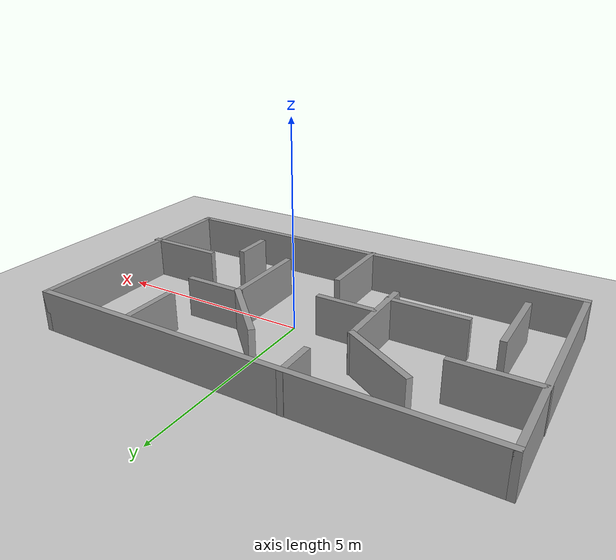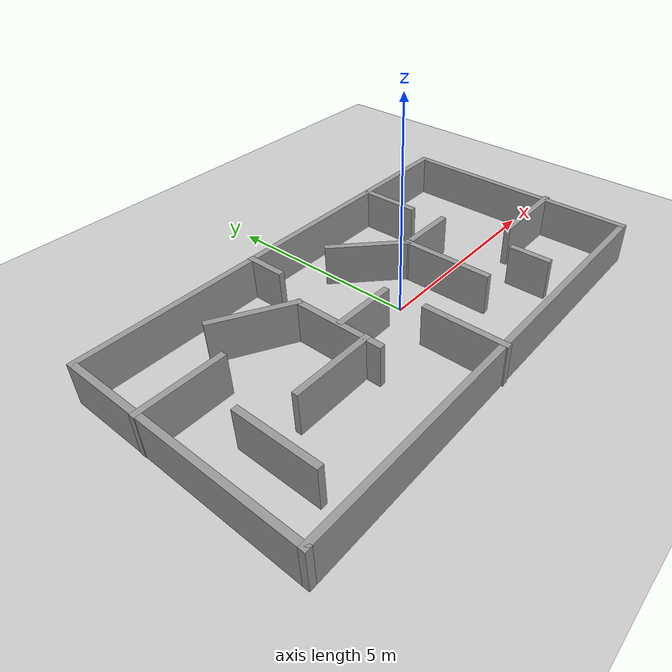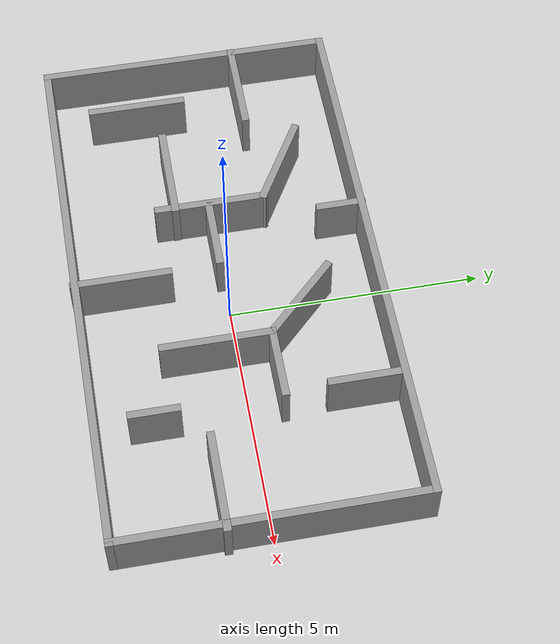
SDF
<sdf version="1.7">
 <world name="default">
  <light name="sun" type="directional">
   <pose>0 0 10 0 -0 0</pose>
   <diffuse>0.8 0.8 0.8 1</diffuse>
   <specular>0.2 0.2 0.2 1</specular>
   <attenuation>
    <range>1000</range>
    <constant>0.9</constant>
    <linear>0.01</linear>
    <quadratic>0.001</quadratic>
   </attenuation>
   <direction>-0.5 0.1 -0.9</direction>
   <spot><inner_angle>0</inner_angle><outer_angle>0</outer_angle><falloff>0</falloff></spot>
  </light>
  <model name="ground_plane">
   <static>1</static>
   <link name="link">
    <collision name="collision">
     <geometry><plane><normal>0 0 1</normal><size>100 100</size></plane></geometry>
     <surface><friction><ode><mu>100</mu><mu2>50</mu2></ode></friction></surface>
    </collision>
    <visual name="visual">
     <cast_shadows>0</cast_shadows>
     <geometry><plane><normal>0 0 1</normal><size>100 100</size></plane></geometry>
     <material>
      <script><uri>file://media/materials/scripts/gazebo.material</uri><name>Gazebo/Grey</name></script>
     </material>
    </visual>
   </link>
  </model>
  <gravity>0 0 -9.8</gravity>
  <magnetic_field>6e-06 2.3e-05 -4.2e-05</magnetic_field>
  <atmosphere type="adiabatic"/>
  <physics type="ode">
   <max_step_size>0.001</max_step_size>
   <real_time_factor>1</real_time_factor>
   <real_time_update_rate>1000</real_time_update_rate>
  </physics>
  <scene><ambient>0.4 0.4 0.4 1</ambient><background>0.7 0.7 0.7 1</background><shadows>1</shadows></scene>
  <spherical_coordinates>
   <surface_model>EARTH_WGS84</surface_model>
   <latitude_deg>0</latitude_deg>
   <longitude_deg>0</longitude_deg>
   <elevation>0</elevation>
   <heading_deg>0</heading_deg>
  </spherical_coordinates>
  <model name="puzzle_lower">
   <pose>-0.5 0 0 0 -0 0</pose>
   <link name="Wall_0">
    <collision name="Wall_0_Collision">
     <geometry><box><size>6 0.15 1</size></box></geometry>
     <pose>0 0 0.5 0 -0 0</pose>
    </collision>
    <visual name="Wall_0_Visual">
     <pose>0 0 0.5 0 -0 0</pose>
     <geometry><box><size>6 0.15 1</size></box></geometry>
     <material>
      <script><uri>file://media/materials/scripts/gazebo.material</uri><name>Gazebo/Grey</name></script>
      <ambient>1 1 1 1</ambient>
     </material>
     <meta><layer>0</layer></meta>
    </visual>
    <pose>-5.4595 0.0105 0 0 -0 1.5708</pose>
   </link>
   <link name="Wall_1">
    <collision name="Wall_1_Collision">
     <geometry><box><size>11 0.15 1</size></box></geometry>
     <pose>0 0 0.5 0 -0 0</pose>
    </collision>
    <visual name="Wall_1_Visual">
     <pose>0 0 0.5 0 -0 0</pose>
     <geometry><box><size>11 0.15 1</size></box></geometry>
     <material>
      <script><uri>file://media/materials/scripts/gazebo.material</uri><name>Gazebo/Grey</name></script>
      <ambient>1 1 1 1</ambient>
     </material>
     <meta><layer>0</layer></meta>
    </visual>
    <pose>-0.0345 2.9355 0 0 -0 0</pose>
   </link>
   <link name="Wall_10">
    <collision name="Wall_10_Collision">
     <geometry><box><size>1.5 0.15 1</size></box></geometry>
     <pose>0 0 0.5 0 -0 0</pose>
    </collision>
    <visual name="Wall_10_Visual">
     <pose>0 0 0.5 0 -0 0</pose>
     <geometry><box><size>1.5 0.15 1</size></box></geometry>
     <material>
      <script><uri>file://media/materials/scripts/gazebo.material</uri><name>Gazebo/Grey</name></script>
      <ambient>1 1 1 1</ambient>
     </material>
     <meta><layer>0</layer></meta>
    </visual>
    <pose>-0.8405 -0.0765 0 0 -0 0</pose>
   </link>
   <link name="Wall_17">
    <collision name="Wall_17_Collision">
     <geometry><box><size>2 0.15 1</size></box></geometry>
     <pose>0 0 0.5 0 -0 0</pose>
    </collision>
    <visual name="Wall_17_Visual">
     <pose>0 0 0.5 0 -0 0</pose>
     <geometry><box><size>2 0.15 1</size></box></geometry>
     <material>
      <script><uri>file://media/materials/scripts/gazebo.material</uri><name>Gazebo/Grey</name></script>
      <ambient>1 1 1 1</ambient>
     </material>
     <meta><layer>0</layer></meta>
    </visual>
    <pose>-0.0815 -2.0195 0 0 -0 1.5708</pose>
   </link>
   <link name="Wall_19">
    <collision name="Wall_19_Collision">
     <geometry><box><size>2 0.15 1</size></box></geometry>
     <pose>0 0 0.5 0 -0 0</pose>
    </collision>
    <visual name="Wall_19_Visual">
     <pose>0 0 0.5 0 -0 0</pose>
     <geometry><box><size>2 0.15 1</size></box></geometry>
     <material>
      <script><uri>file://media/materials/scripts/gazebo.material</uri><name>Gazebo/Grey</name></script>
      <ambient>1 1 1 1</ambient>
     </material>
     <meta><layer>0</layer></meta>
    </visual>
    <pose>-2.4865 -0.7475 0 0 -0 3.14159</pose>
   </link>
   <link name="Wall_2">
    <collision name="Wall_2_Collision">
     <geometry><box><size>6 0.15 1</size></box></geometry>
     <pose>0 0 0.5 0 -0 0</pose>
    </collision>
    <visual name="Wall_2_Visual">
     <pose>0 0 0.5 0 -0 0</pose>
     <geometry><box><size>6 0.15 1</size></box></geometry>
     <material>
      <script><uri>file://media/materials/scripts/gazebo.material</uri><name>Gazebo/Grey</name></script>
      <ambient>1 1 1 1</ambient>
     </material>
     <meta><layer>0</layer></meta>
    </visual>
    <pose>5.3905 0.0105 0 0 -0 -1.5708</pose>
   </link>
   <link name="Wall_25">
    <collision name="Wall_25_Collision">
     <geometry><box><size>2 0.15 1</size></box></geometry>
     <pose>0 0 0.5 0 -0 0</pose>
    </collision>
    <visual name="Wall_25_Visual">
     <pose>0 0 0.5 0 -0 0</pose>
     <geometry><box><size>2 0.15 1</size></box></geometry>
     <material>
      <script><uri>file://media/materials/scripts/gazebo.material</uri><name>Gazebo/Grey</name></script>
      <ambient>1 1 1 1</ambient>
     </material>
     <meta><layer>0</layer></meta>
    </visual>
    <pose>0.966 1.3055 0 0 -0 -0.785016</pose>
   </link>
   <link name="Wall_26">
    <collision name="Wall_26_Collision">
     <geometry><box><size>2.25 0.15 1</size></box></geometry>
     <pose>0 0 0.5 0 -0 0</pose>
    </collision>
    <visual name="Wall_26_Visual">
     <pose>0 0 0.5 0 -0 0</pose>
     <geometry><box><size>2.25 0.15 1</size></box></geometry>
     <material>
      <script><uri>file://media/materials/scripts/gazebo.material</uri><name>Gazebo/Grey</name></script>
      <ambient>1 1 1 1</ambient>
     </material>
     <meta><layer>0</layer></meta>
    </visual>
    <pose>1.6205 -0.3985 0 0 -0 -1.5708</pose>
   </link>
   <link name="Wall_28">
    <collision name="Wall_28_Collision">
     <geometry><box><size>1.5 0.15 1</size></box></geometry>
     <pose>0 0 0.5 0 -0 0</pose>
    </collision>
    <visual name="Wall_28_Visual">
     <pose>0 0 0.5 0 -0 0</pose>
     <geometry><box><size>1.5 0.15 1</size></box></geometry>
     <material>
      <script><uri>file://media/materials/scripts/gazebo.material</uri><name>Gazebo/Grey</name></script>
      <ambient>1 1 1 1</ambient>
     </material>
     <meta><layer>0</layer></meta>
    </visual>
    <pose>2.9025 2.2095 0 0 -0 -1.5708</pose>
   </link>
   <link name="Wall_3">
    <collision name="Wall_3_Collision">
     <geometry><box><size>11 0.15 1</size></box></geometry>
     <pose>0 0 0.5 0 -0 0</pose>
    </collision>
    <visual name="Wall_3_Visual">
     <pose>0 0 0.5 0 -0 0</pose>
     <geometry><box><size>11 0.15 1</size></box></geometry>
     <material>
      <script><uri>file://media/materials/scripts/gazebo.material</uri><name>Gazebo/Grey</name></script>
      <ambient>1 1 1 1</ambient>
     </material>
     <meta><layer>0</layer></meta>
    </visual>
    <pose>-0.0345 -2.9145 0 0 -0 3.14159</pose>
   </link>
   <link name="Wall_30">
    <collision name="Wall_30_Collision">
     <geometry><box><size>1.5 0.15 1</size></box></geometry>
     <pose>0 0 0.5 0 -0 0</pose>
    </collision>
    <visual name="Wall_30_Visual">
     <pose>0 0 0.5 0 -0 0</pose>
     <geometry><box><size>1.5 0.15 1</size></box></geometry>
     <material>
      <script><uri>file://media/materials/scripts/gazebo.material</uri><name>Gazebo/Grey</name></script>
      <ambient>1 1 1 1</ambient>
     </material>
     <meta><layer>0</layer></meta>
    </visual>
    <pose>2.2955 0.6515 0 0 -0 0</pose>
   </link>
   <link name="Wall_32">
    <collision name="Wall_32_Collision">
     <geometry><box><size>2 0.15 1</size></box></geometry>
     <pose>0 0 0.5 0 -0 0</pose>
    </collision>
    <visual name="Wall_32_Visual">
     <pose>0 0 0.5 0 -0 0</pose>
     <geometry><box><size>2 0.15 1</size></box></geometry>
     <material>
      <script><uri>file://media/materials/scripts/gazebo.material</uri><name>Gazebo/Grey</name></script>
      <ambient>1 1 1 1</ambient>
     </material>
     <meta><layer>0</layer></meta>
    </visual>
    <pose>4.5455 -0.8395 0 0 -0 3.14159</pose>
   </link>
   <link name="Wall_35">
    <collision name="Wall_35_Collision">
     <geometry><box><size>2 0.15 1</size></box></geometry>
     <pose>0 0 0.5 0 -0 0</pose>
    </collision>
    <visual name="Wall_35_Visual">
     <pose>0 0 0.5 0 -0 0</pose>
     <geometry><box><size>2 0.15 1</size></box></geometry>
     <material>
      <script><uri>file://media/materials/scripts/gazebo.material</uri><name>Gazebo/Grey</name></script>
      <ambient>1 1 1 1</ambient>
     </material>
     <meta><layer>0</layer></meta>
    </visual>
    <pose>-4.3375 -1.1635 0 0 -0 -1.5708</pose>
   </link>
   <link name="Wall_37">
    <collision name="Wall_37_Collision">
     <geometry><box><size>1 0.15 1</size></box></geometry>
     <pose>0 0 0.5 0 -0 0</pose>
    </collision>
    <visual name="Wall_37_Visual">
     <pose>0 0 0.5 0 -0 0</pose>
     <geometry><box><size>1 0.15 1</size></box></geometry>
     <material>
      <script><uri>file://media/materials/scripts/gazebo.material</uri><name>Gazebo/Grey</name></script>
      <ambient>1 1 1 1</ambient>
     </material>
     <meta><layer>0</layer></meta>
    </visual>
    <pose>2.9485 -1.7895 0 0 -0 1.5708</pose>
   </link>
   <link name="Wall_39">
    <collision name="Wall_39_Collision">
     <geometry><box><size>1 0.15 1</size></box></geometry>
     <pose>0 0 0.5 0 -0 0</pose>
    </collision>
    <visual name="Wall_39_Visual">
     <pose>0 0 0.5 0 -0 0</pose>
     <geometry><box><size>1 0.15 1</size></box></geometry>
     <material>
      <script><uri>file://media/materials/scripts/gazebo.material</uri><name>Gazebo/Grey</name></script>
      <ambient>1 1 1 1</ambient>
     </material>
     <meta><layer>0</layer></meta>
    </visual>
    <pose>-1.0915 2.5195 0 0 -0 -1.5708</pose>
   </link>
   <link name="Wall_5">
    <collision name="Wall_5_Collision">
     <geometry><box><size>2 0.15 1</size></box></geometry>
     <pose>0 0 0.5 0 -0 0</pose>
    </collision>
    <visual name="Wall_5_Visual">
     <pose>0 0 0.5 0 -0 0</pose>
     <geometry><box><size>2 0.15 1</size></box></geometry>
     <material>
      <script><uri>file://media/materials/scripts/gazebo.material</uri><name>Gazebo/Grey</name></script>
      <ambient>1 1 1 1</ambient>
     </material>
     <meta><layer>0</layer></meta>
    </visual>
    <pose>-4.5455 1.0105 0 0 -0 0</pose>
   </link>
   <link name="Wall_7">
    <collision name="Wall_7_Collision">
     <geometry><box><size>2 0.15 1</size></box></geometry>
     <pose>0 0 0.5 0 -0 0</pose>
    </collision>
    <visual name="Wall_7_Visual">
     <pose>0 0 0.5 0 -0 0</pose>
     <geometry><box><size>2 0.15 1</size></box></geometry>
     <material>
      <script><uri>file://media/materials/scripts/gazebo.material</uri><name>Gazebo/Grey</name></script>
      <ambient>1 1 1 1</ambient>
     </material>
     <meta><layer>0</layer></meta>
    </visual>
    <pose>-2.3795 1.504 0 0 -0 -0.523639</pose>
   </link>
   <link name="Wall_8">
    <collision name="Wall_8_Collision">
     <geometry><box><size>2.28044 0.15 1</size></box></geometry>
     <pose>0 0 0.5 0 -0 0</pose>
    </collision>
    <visual name="Wall_8_Visual">
     <pose>0 0 0.5 0 -0 0</pose>
     <geometry><box><size>2.28044 0.15 1</size></box></geometry>
     <material>
      <script><uri>file://media/materials/scripts/gazebo.material</uri><name>Gazebo/Grey</name></script>
      <ambient>1 1 1 1</ambient>
     </material>
     <meta><layer>0</layer></meta>
    </visual>
    <pose>-1.5785 -0.0235 0 0 -0 -1.5708</pose>
   </link>
   <static>1</static>
  </model>
 </world>
</sdf>
